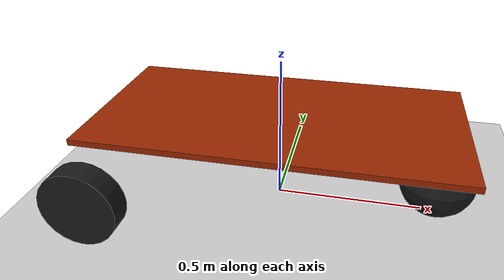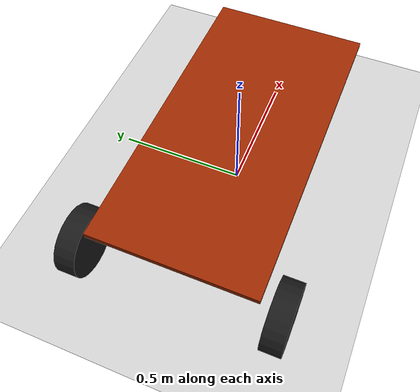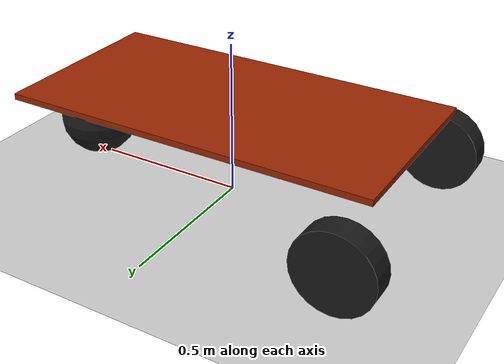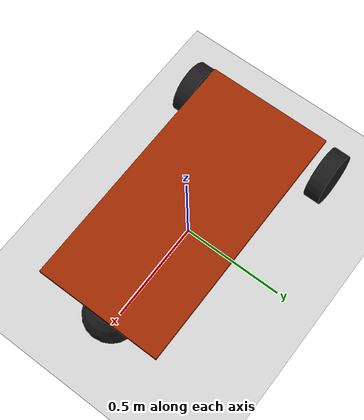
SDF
<?xml version="1.0" ?>
<!-- |    This document was autogenerated by xacro from building_robot.sdf.xacro       | -->
<!-- |    EDITING THIS FILE BY HAND IS NOT RECOMMENDED                                 | -->
<sdf version="1.10">
  <!--Distance between ground and center of base-->
  <world name="rover_world">
    <!-- Moving Forward-->
    <plugin filename="gz-sim-triggered-publisher-system" name="gz::sim::systems::TriggeredPublisher">
      <input topic="/keyboard/keypress" type="gz.msgs.Int32">
        <match field="data">16777235</match>
      </input>
      <output topic="/cmd_vel" type="gz.msgs.Twist">
		linear: {x: 0.5}, angular: {z: 0.0}
	    </output>
    </plugin>
    <physics name="1ms" type="ignored">
      <max_step_size>0.001</max_step_size>
      <real_time_factor>1.0</real_time_factor>
    </physics>
    <plugin filename="gz-sim-physics-system" name="gz::sim::systems::Physics">
        </plugin>
    <plugin filename="gz-sim-user-commands-system" name="gz::sim::systems::UserCommands">
        </plugin>
    <plugin filename="gz-sim-scene-broadcaster-system" name="gz::sim::systems::SceneBroadcaster">
        </plugin>
    <light name="sun" type="directional">
      <cast_shadows>true</cast_shadows>
      <pose>0 0 10 0 0 0</pose>
      <diffuse>0.8 0.8 0.8 1</diffuse>
      <specular>0.2 0.2 0.2 1</specular>
      <attenuation>
        <range>1000</range>
        <constant>0.9</constant>
        <linear>0.01</linear>
        <quadratic>0.001</quadratic>
      </attenuation>
      <direction>-0.5 0.1 -0.9</direction>
    </light>
    <model name="ground_plane">
      <static>true</static>
      <link name="link">
        <collision name="collision">
          <geometry>
            <plane>
              <normal>0 0 1</normal>
            </plane>
          </geometry>
        </collision>
        <visual name="visual">
          <geometry>
            <plane>
              <normal>0 0 1</normal>
              <size>100 100</size>
            </plane>
          </geometry>
          <material>
            <ambient>0.8 0.8 0.8 1</ambient>
            <specular>0.8 0.8 0.8 1</specular>
            <diffuse>0.8 0.8 0.8 1</diffuse>
          </material>
        </visual>
      </link>
    </model>
    <model canonical_link="chassis" name="rover">
      <plugin filename="gz-sim-diff-drive-system" name="gz::sim::systems::DiffDrive">
        <left_joint>left_wheel_joint</left_joint>
        <right_joint>right_wheel_joint</right_joint>
        <wheel_separation>1.2</wheel_separation>
        <wheel_radius>0.4</wheel_radius>
        <odom_publish_frequency>1</odom_publish_frequency>
        <topic>cmd_vel</topic>
      </plugin>
      <pose relative_to="world">0 0 0 0 0 0</pose>
      <link name="chassis">
        <pose relative_to="__model__">0 0 0.305 0 0 0</pose>
        <inertial>
          <mass>1.14395</mass>
          <inertia>
            <ixx>0.095329</ixx>
            <ixy>0</ixy>
            <ixz>0</ixz>
            <iyy>0.381317</iyy>
            <iyz>0</iyz>
            <izz>0.476646</izz>
          </inertia>
        </inertial>
        <visual name="visual">
          <geometry>
            <box>
              <size>1.22 0.615 0.02</size>
            </box>
          </geometry>
          <material>
            <ambient>0.6 0.15 0.0 1</ambient>
            <specular>0.6 0.15 0.0 1</specular>
            <diffuse>0.6 0.15 0.0 1</diffuse>
          </material>
        </visual>
        <collision name="collision">
          <geometry>
            <box>
              <size>1.22 0.615 0.02</size>
            </box>
          </geometry>
        </collision>
      </link>
      <joint name="left_wheel_joint" type="revolute">
        <pose relative_to="left_wheel"/>
        <parent>chassis</parent>
        <child>left_wheel</child>
        <axis>
          <xyz expressed_in="__model__">0 1 0</xyz>
          <limit>
            <lower>-1.79769e+308</lower>
            <!--negative infinity-->
            <upper>1.79769e+308</upper>
            <!--positive infinity-->
          </limit>
        </axis>
      </joint>
      <link name="left_wheel">
        <pose relative_to="chassis">
		    -0.5549999999999999
		    0.376
		    -0.1755
		    -1.5707 0 0
		</pose>
        <inertial>
          <mass>1</mass>
          <inertia>
            <ixx>0.043333</ixx>
            <ixy>0</ixy>
            <ixz>0</ixz>
            <iyy>0.043333</iyy>
            <iyz>0</iyz>
            <izz>0.08</izz>
          </inertia>
        </inertial>
        <visual name="visual">
          <geometry>
            <cylinder>
              <radius>0.1295</radius>
              <length>0.08</length>
            </cylinder>
          </geometry>
          <material>
            <ambient>0.1 0.1 0.1 1</ambient>
            <specular>0.1 0.1 0.1 1</specular>
            <diffuse>0.1 0.1 0.1 1</diffuse>
          </material>
        </visual>
        <collision name="collision">
          <geometry>
            <cylinder>
              <radius>0.1295</radius>
              <length>0.08</length>
            </cylinder>
          </geometry>
        </collision>
      </link>
      <joint name="right_wheel_joint" type="revolute">
        <pose relative_to="right_wheel"/>
        <parent>chassis</parent>
        <child>right_wheel</child>
        <axis>
          <xyz expressed_in="__model__">0 1 0</xyz>
          <limit>
            <lower>-1.79769e+308</lower>
            <!--negative infinity-->
            <upper>1.79769e+308</upper>
            <!--positive infinity-->
          </limit>
        </axis>
      </joint>
      <link name="right_wheel">
        <pose relative_to="chassis">
		    -0.5549999999999999
		    -0.376
		    -0.1755
		    -1.5707 0 0
		</pose>
        <inertial>
          <mass>1</mass>
          <inertia>
            <ixx>0.043333</ixx>
            <ixy>0</ixy>
            <ixz>0</ixz>
            <iyy>0.043333</iyy>
            <iyz>0</iyz>
            <izz>0.08</izz>
          </inertia>
        </inertial>
        <visual name="visual">
          <geometry>
            <cylinder>
              <radius>0.1295</radius>
              <length>0.08</length>
            </cylinder>
          </geometry>
          <material>
            <ambient>0.1 0.1 0.1 1</ambient>
            <specular>0.1 0.1 0.1 1</specular>
            <diffuse>0.1 0.1 0.1 1</diffuse>
          </material>
        </visual>
        <collision name="collision">
          <geometry>
            <cylinder>
              <radius>0.1295</radius>
              <length>0.08</length>
            </cylinder>
          </geometry>
        </collision>
      </link>
      <frame attached_to="chassis" name="caster_frame">
        <pose>0.54 0 -0.1755 0 0 0</pose>
      </frame>
      <joint name="caster_wheel" type="ball">
        <parent>chassis</parent>
        <child>caster</child>
      </joint>
      <!--caster wheel-->
      <link name="caster">
        <pose relative_to="caster_frame"/>
        <inertial>
          <mass>1</mass>
          <inertia>
            <ixx>0.016</ixx>
            <ixy>0</ixy>
            <ixz>0</ixz>
            <iyy>0.016</iyy>
            <iyz>0</iyz>
            <izz>0.016</izz>
          </inertia>
        </inertial>
        <visual name="visual">
          <geometry>
            <sphere>
              <radius>0.1295</radius>
            </sphere>
          </geometry>
          <material>
            <ambient>0.1 0.1 0.1 1</ambient>
            <specular>0.1 0.1 0.1 1</specular>
            <diffuse>0.1 0.1 0.1 1</diffuse>
          </material>
        </visual>
        <collision name="collision">
          <geometry>
            <sphere>
              <radius>0.1295</radius>
            </sphere>
          </geometry>
        </collision>
      </link>
    </model>
  </world>
</sdf>
